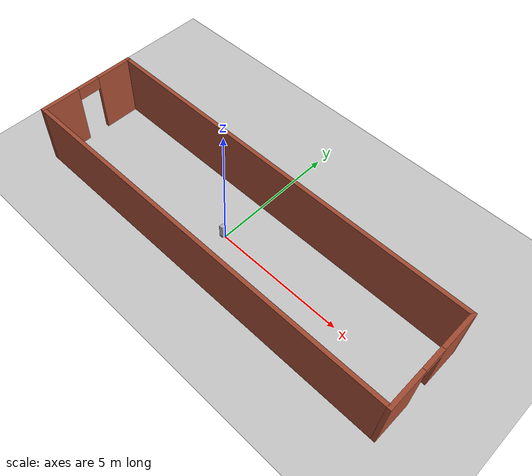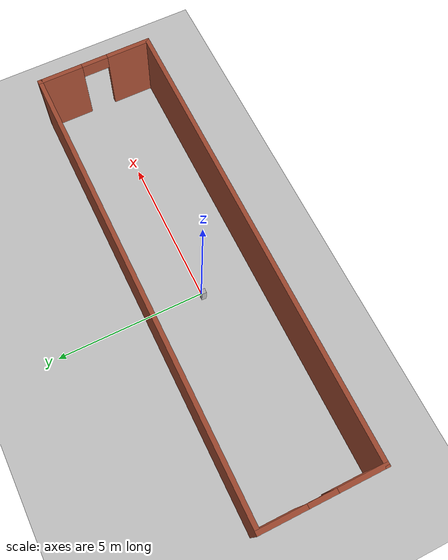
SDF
<sdf version="1.6">
 <world name="default">
  <light name="sun" type="directional">
   <pose>0 0 10 0 -0 0</pose>
   <diffuse>0.8 0.8 0.8 1</diffuse>
   <specular>0.2 0.2 0.2 1</specular>
   <attenuation>
    <range>1000</range>
    <constant>0.9</constant>
    <linear>0.01</linear>
    <quadratic>0.001</quadratic>
   </attenuation>
   <direction>-0.5 0.1 -0.9</direction>
  </light>
  <model name="ground_plane">
   <static>1</static>
   <link name="link">
    <collision name="collision">
     <geometry><plane><normal>0 0 1</normal><size>100 100</size></plane></geometry>
     <surface>
      <contact><collide_bitmask>65535</collide_bitmask></contact>
      <friction><ode><mu>100</mu><mu2>50</mu2></ode></friction>
     </surface>
    </collision>
    <visual name="visual">
     <cast_shadows>0</cast_shadows>
     <geometry><plane><normal>0 0 1</normal><size>100 100</size></plane></geometry>
     <material>
      <script><uri>file://media/materials/scripts/gazebo.material</uri><name>Gazebo/Grey</name></script>
     </material>
    </visual>
   </link>
  </model>
  <gravity>0 0 -9.8</gravity>
  <magnetic_field>6e-06 2.3e-05 -4.2e-05</magnetic_field>
  <atmosphere type="adiabatic"/>
  <physics name="default_physics" default="0" type="ode">
   <max_step_size>0.001</max_step_size>
   <real_time_factor>1</real_time_factor>
   <real_time_update_rate>1000</real_time_update_rate>
  </physics>
  <scene><ambient>0.4 0.4 0.4 1</ambient><background>0.7 0.7 0.7 1</background><shadows>1</shadows></scene>
  <audio><device>default</device></audio>
  <spherical_coordinates>
   <surface_model>EARTH_WGS84</surface_model>
   <latitude_deg>0</latitude_deg>
   <longitude_deg>0</longitude_deg>
   <elevation>0</elevation>
   <heading_deg>0</heading_deg>
  </spherical_coordinates>
  <model name="kbot">
   <link name="base_footprint">
    <inertial>
     <pose>0 0 0.003636 0 -0 0</pose>
     <mass>11</mass>
     <inertia>
      <ixx>0.00359788</ixx>
      <ixy>0</ixy>
      <ixz>0</ixz>
      <iyy>0.00572288</iyy>
      <iyz>0</iyz>
      <izz>0.00214333</izz>
     </inertia>
    </inertial>
    <collision name="base_footprint_fixed_joint_lump__base_link_collision">
     <pose>0 0 0.04 0 -0 0</pose>
     <geometry><box><size>0.16 0.16 0.01</size></box></geometry>
    </collision>
    <visual name="base_footprint_visual"><geometry><box><size>0.001 0.001 0.001</size></box></geometry></visual>
    <visual name="base_footprint_fixed_joint_lump__base_link_visual_1">
     <pose>0 0 0.04 0 -0 0</pose>
     <geometry><box><size>0.16 0.16 1</size></box></geometry>
    </visual>
   </link>
   <link name="caster_wheel">
    <pose>-0.052 0 0.0175 0 -0 0</pose>
    <inertial>
     <mass>1</mass>
     <inertia>
      <ixx>0.0001225</ixx>
      <ixy>0</ixy>
      <ixz>0</ixz>
      <iyy>0.0001225</iyy>
      <iyz>0</iyz>
      <izz>0.0001225</izz>
     </inertia>
    </inertial>
    <collision name="caster_wheel_collision">
     <geometry><sphere><radius>0.0175</radius></sphere></geometry>
    </collision>
    <visual name="caster_wheel_visual"><geometry><sphere><radius>0.0175</radius></sphere></geometry></visual>
   </link>
   <joint name="caster_wheel_joint" type="revolute">
    <child>caster_wheel</child>
    <parent>base_footprint</parent>
    <axis>
     <xyz>0 1 0</xyz>
     <limit><lower>-1e+16</lower><upper>1e+16</upper></limit>
     <dynamics><spring_reference>0</spring_reference><spring_stiffness>0</spring_stiffness></dynamics>
     <use_parent_model_frame>1</use_parent_model_frame>
    </axis>
   </joint>
   <link name="left_wheel">
    <pose>0.02 0.087 0.035 0 -0 0</pose>
    <inertial>
     <mass>1</mass>
     <inertia>
      <ixx>0.000308333</ixx>
      <ixy>0</ixy>
      <ixz>0</ixz>
      <iyy>0.000308333</iyy>
      <iyz>0</iyz>
      <izz>0.0006125</izz>
     </inertia>
    </inertial>
    <collision name="left_wheel_collision">
     <pose>0 0 0 1.5708 -0 0</pose>
     <geometry><cylinder><length>0.005</length><radius>0.035</radius></cylinder></geometry>
    </collision>
    <visual name="left_wheel_visual">
     <pose>0 0 0 1.5708 -0 0</pose>
     <geometry><cylinder><length>0.005</length><radius>0.035</radius></cylinder></geometry>
    </visual>
   </link>
   <joint name="left_wheel_joint" type="revolute">
    <child>left_wheel</child>
    <parent>base_footprint</parent>
    <axis>
     <xyz>0 1 0</xyz>
     <limit><lower>-1e+16</lower><upper>1e+16</upper></limit>
     <dynamics><spring_reference>0</spring_reference><spring_stiffness>0</spring_stiffness></dynamics>
     <use_parent_model_frame>1</use_parent_model_frame>
    </axis>
   </joint>
   <link name="right_wheel">
    <pose>0.02 -0.087 0.035 0 -0 0</pose>
    <inertial>
     <mass>1</mass>
     <inertia>
      <ixx>0.000308333</ixx>
      <ixy>0</ixy>
      <ixz>0</ixz>
      <iyy>0.000308333</iyy>
      <iyz>0</iyz>
      <izz>0.0006125</izz>
     </inertia>
    </inertial>
    <collision name="right_wheel_collision">
     <pose>0 0 0 1.5708 -0 0</pose>
     <geometry><cylinder><length>0.005</length><radius>0.035</radius></cylinder></geometry>
    </collision>
    <visual name="right_wheel_visual">
     <pose>0 0 0 1.5708 -0 0</pose>
     <geometry><cylinder><length>0.005</length><radius>0.035</radius></cylinder></geometry>
    </visual>
   </link>
   <joint name="right_wheel_joint" type="revolute">
    <child>right_wheel</child>
    <parent>base_footprint</parent>
    <axis>
     <xyz>0 1 0</xyz>
     <limit><lower>-1e+16</lower><upper>1e+16</upper></limit>
     <dynamics><spring_reference>0</spring_reference><spring_stiffness>0</spring_stiffness></dynamics>
     <use_parent_model_frame>1</use_parent_model_frame>
    </axis>
   </joint>
   <static>0</static>
   <plugin name="differential_drive_controller" filename="libgazebo_ros_diff_drive.so">
    <alwaysOn>0</alwaysOn>
    <legacyMode>0</legacyMode>
    <updateRate>20</updateRate>
    <leftJoint>left_wheel_joint</leftJoint>
    <rightJoint>right_wheel_joint</rightJoint>
    <wheelSeparation>0.15</wheelSeparation>
    <wheelDiameter>0.07</wheelDiameter>
    <torque>20</torque>
    <commandTopic>/kbot/base_controller/cmd_vel</commandTopic>
    <odometryTopic>/kbot/base_controller/odom</odometryTopic>
    <odometryFrame>odom</odometryFrame>
    <robotBaseFrame>base_footprint</robotBaseFrame>
    <robotNamespace>/</robotNamespace>
   </plugin>
   <pose>-0.120167 -0.001442 -2e-06 0 -9.7e-05 -0.047815</pose>
  </model>
  <model name="Hallway">
   <pose>0.438343 0.012798 0 0 -0 0</pose>
   <link name="Wall_5">
    <collision name="Wall_5_Collision">
     <geometry><box><size>15.5 0.15 2.5</size></box></geometry>
     <pose>0 0 1.25 0 -0 0</pose>
    </collision>
    <visual name="Wall_5_Visual">
     <pose>0 0 1.25 0 -0 0</pose>
     <geometry><box><size>15.5 0.15 2.5</size></box></geometry>
     <material>
      <script><uri>file://media/materials/scripts/gazebo.material</uri><name>Gazebo/Bricks</name></script>
      <ambient>0.996078 0.47451 0.0196078 1</ambient>
     </material>
     <meta><layer>0</layer></meta>
    </visual>
    <pose>-0 -1.925 0 0 -0 0</pose>
   </link>
   <link name="Wall_6">
    <pose>7.675 0 0 0 -0 1.5708</pose>
    <visual name="Wall_6_Visual_0">
     <pose>-1.22208 0 1.25 0 -0 0</pose>
     <geometry><box><size>1.55585 0.15 2.5</size></box></geometry>
     <material>
      <script><uri>file://media/materials/scripts/gazebo.material</uri><name>Gazebo/Bricks</name></script>
      <ambient>0.996078 0.47451 0.0196078 1</ambient>
     </material>
     <meta><layer>0</layer></meta>
    </visual>
    <collision name="Wall_6_Collision_0">
     <geometry><box><size>1.55585 0.15 2.5</size></box></geometry>
     <pose>-1.22208 0 1.25 0 -0 0</pose>
    </collision>
    <visual name="Wall_6_Visual_1">
     <pose>1.22792 0 1.25 0 -0 0</pose>
     <geometry><box><size>1.54415 0.15 2.5</size></box></geometry>
     <material>
      <script><uri>file://media/materials/scripts/gazebo.material</uri><name>Gazebo/Bricks</name></script>
      <ambient>0.996078 0.47451 0.0196078 1</ambient>
     </material>
     <meta><layer>0</layer></meta>
    </visual>
    <collision name="Wall_6_Collision_1">
     <geometry><box><size>1.54415 0.15 2.5</size></box></geometry>
     <pose>1.22792 0 1.25 0 -0 0</pose>
    </collision>
    <visual name="Wall_6_Visual_2">
     <pose>0.00585 0 2.25 0 -0 0</pose>
     <geometry><box><size>0.9 0.15 0.5</size></box></geometry>
     <material>
      <script><uri>file://media/materials/scripts/gazebo.material</uri><name>Gazebo/Bricks</name></script>
      <ambient>0.996078 0.47451 0.0196078 1</ambient>
     </material>
     <meta><layer>0</layer></meta>
    </visual>
    <collision name="Wall_6_Collision_2">
     <geometry><box><size>0.9 0.15 0.5</size></box></geometry>
     <pose>0.00585 0 2.25 0 -0 0</pose>
    </collision>
   </link>
   <link name="Wall_7">
    <collision name="Wall_7_Collision">
     <geometry><box><size>15.5 0.15 2.5</size></box></geometry>
     <pose>0 0 1.25 0 -0 0</pose>
    </collision>
    <visual name="Wall_7_Visual">
     <pose>0 0 1.25 0 -0 0</pose>
     <geometry><box><size>15.5 0.15 2.5</size></box></geometry>
     <material>
      <script><uri>file://media/materials/scripts/gazebo.material</uri><name>Gazebo/Bricks</name></script>
      <ambient>0.996078 0.47451 0.0196078 1</ambient>
     </material>
     <meta><layer>0</layer></meta>
    </visual>
    <pose>-0 1.925 0 0 -0 3.14159</pose>
   </link>
   <link name="Wall_8">
    <pose>-7.675 0 0 0 -0 -1.5708</pose>
    <visual name="Wall_8_Visual_0">
     <pose>-1.23236 0 1.25 0 -0 0</pose>
     <geometry><box><size>1.53528 0.15 2.5</size></box></geometry>
     <material>
      <script><uri>file://media/materials/scripts/gazebo.material</uri><name>Gazebo/Bricks</name></script>
      <ambient>0.996078 0.47451 0.0196078 1</ambient>
     </material>
     <meta><layer>0</layer></meta>
    </visual>
    <collision name="Wall_8_Collision_0">
     <geometry><box><size>1.53528 0.15 2.5</size></box></geometry>
     <pose>-1.23236 0 1.25 0 -0 0</pose>
    </collision>
    <visual name="Wall_8_Visual_1">
     <pose>1.21764 0 1.25 0 -0 0</pose>
     <geometry><box><size>1.56472 0.15 2.5</size></box></geometry>
     <material>
      <script><uri>file://media/materials/scripts/gazebo.material</uri><name>Gazebo/Bricks</name></script>
      <ambient>0.996078 0.47451 0.0196078 1</ambient>
     </material>
     <meta><layer>0</layer></meta>
    </visual>
    <collision name="Wall_8_Collision_1">
     <geometry><box><size>1.56472 0.15 2.5</size></box></geometry>
     <pose>1.21764 0 1.25 0 -0 0</pose>
    </collision>
    <visual name="Wall_8_Visual_2">
     <pose>-0.01472 0 2.25 0 -0 0</pose>
     <geometry><box><size>0.9 0.15 0.5</size></box></geometry>
     <material>
      <script><uri>file://media/materials/scripts/gazebo.material</uri><name>Gazebo/Bricks</name></script>
      <ambient>0.996078 0.47451 0.0196078 1</ambient>
     </material>
     <meta><layer>0</layer></meta>
    </visual>
    <collision name="Wall_8_Collision_2">
     <geometry><box><size>0.9 0.15 0.5</size></box></geometry>
     <pose>-0.01472 0 2.25 0 -0 0</pose>
    </collision>
   </link>
   <static>1</static>
  </model>
 </world>
</sdf>
